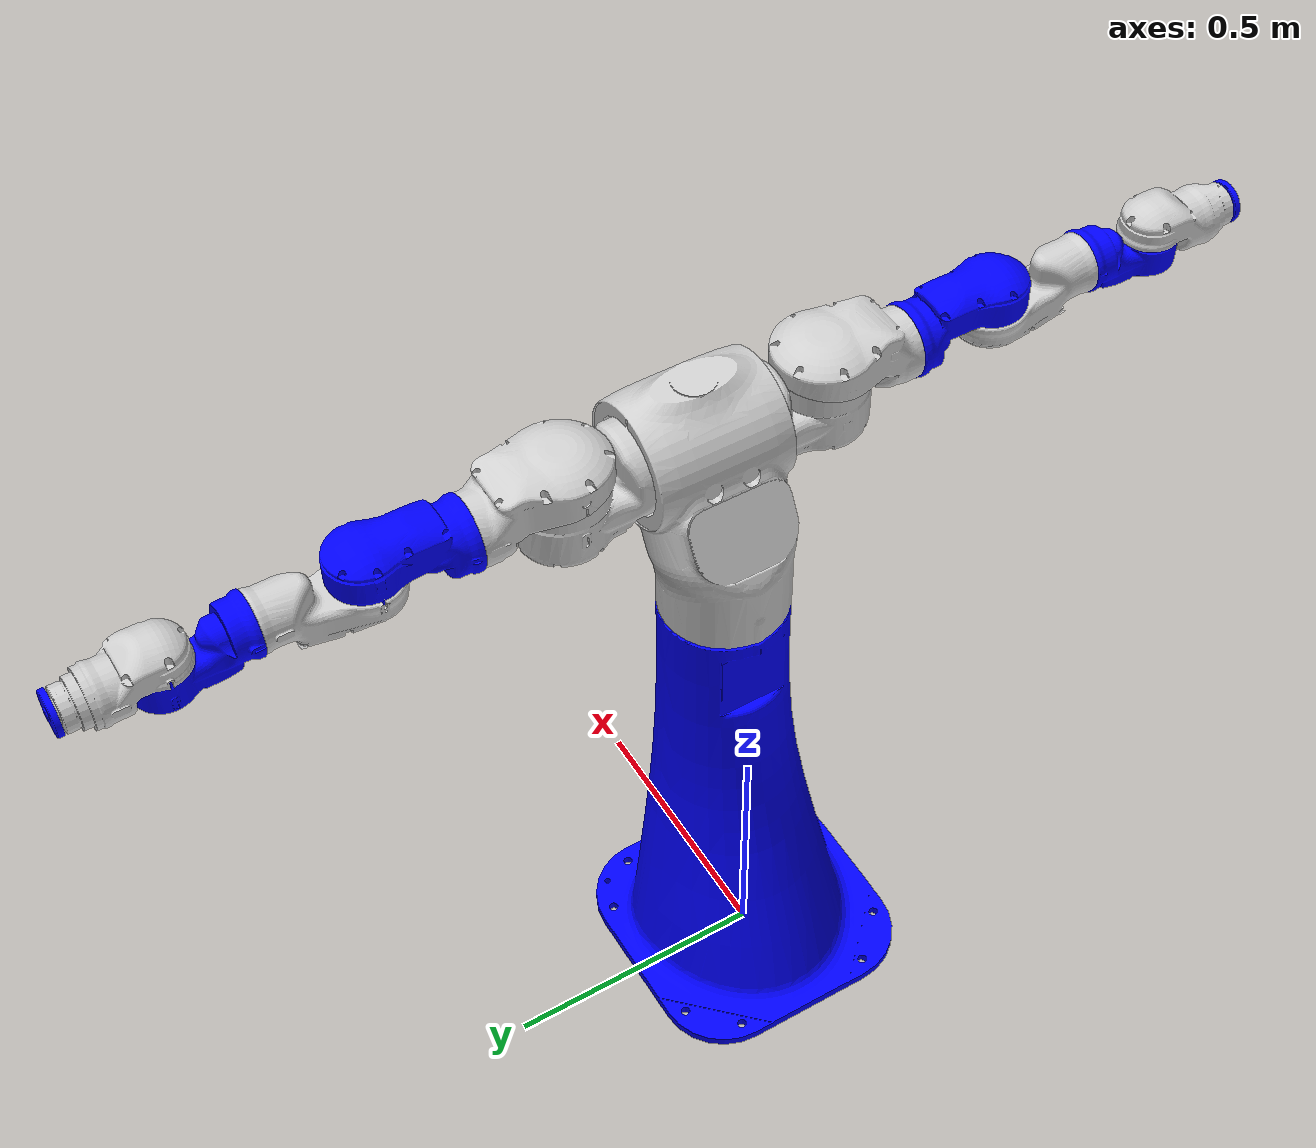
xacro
<?xml version="1.0" ?>
<robot name="motoman_sda10f" xmlns:xacro="http://www.ros.org/wiki/xacro">
  <xacro:include filename="$(find lenny_gazebo)/urdf/sda10f_macro.xacro" />
  <xacro:motoman_sda10f prefix=""/>
  <!-- Rigidly fix the model to the world -->
  <link name="world"/>
  <joint name="fixation_joint" type="fixed">
    <parent link="world"/>
    <child link="torso_base_link"/>
  </joint>
  <!-- ros_control plugin  -->
  <gazebo>
    <plugin name="ros_control" filename="libgazebo_ros_control.so"/>
  </gazebo>
</robot>

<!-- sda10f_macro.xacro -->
<robot xmlns:xacro="http://www.ros.org/wiki/xacro">
  <!-- Include xacro files -->
  <xacro:include
    filename="$(find lenny_gazebo)/urdf/common_torso_macro.xacro" />
  <xacro:include
    filename="$(find lenny_gazebo)/urdf/arm_macro.xacro" />

  <!-- Robot xacro -->
  <xacro:macro name="motoman_sda10f" params="prefix">
    <!-- Torso -->
    <xacro:torso name="${prefix}torso" prefix="${prefix}torso_"/>
    <!-- Left arm -->
    <xacro:motoman_arm name="${prefix}arm_left" prefix="${prefix}arm_left_"
      parent="${prefix}torso_link_b1" reflect="1">
        <origin xyz="0.09996 0.0275 0.32214" rpy="1.57 0 0" />
    </xacro:motoman_arm>
    <!-- Right arm -->
    <xacro:motoman_arm name="${prefix}arm_right" prefix="${prefix}arm_right_"
      parent="${prefix}torso_link_b1" reflect="-1">
        <origin xyz="0.09996 -0.0275 0.32214" rpy="1.57 0 0" />
    </xacro:motoman_arm>
  </xacro:macro>

  <!-- The following is for backwards-compatibility, it should not be used -->
  <!-- see: https://github.com/ros-industrial/motoman/issues/166 -->
  <xacro:macro name="sda10f">
    <xacro:motoman_sda10f prefix=""/>
  </xacro:macro>

</robot>

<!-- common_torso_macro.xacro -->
<robot xmlns:xacro="http://www.ros.org/wiki/xacro">
  <xacro:macro name="torso" params="name prefix">
    <!-- link list -->
    <link name="${prefix}base_link">
      <visual>
        <geometry>
          <mesh filename="package://motoman_sda10f_support/meshes/sda10f/visual/motoman_base.stl" />
        </geometry>
        <material name="blue">
          <color rgba="0 0 1 1"/>
        </material>
      </visual>
      <collision>
        <geometry>
          <mesh filename="package://motoman_sda10f_support/meshes/sda10f/collision/motoman_base.stl" />
        </geometry>
        <material name="yellow">
          <color rgba="0 1 1 1"/>
        </material>
      </collision>
      <inertial>
        <origin xyz="0 0 0.43" rpy="0 0 0" />
        <mass value="100" />
        <inertia  ixx="7.16333333333" ixy="0" ixz="0"
                  iyy="7.16333333333" iyz="0"
                  izz="2" />
      </inertial>
    </link>
    <link name="${prefix}link_b1">
      <visual>
        <origin rpy="0 0 0" xyz="0 0 0"/>
        <geometry>
          <mesh filename="package://motoman_sda10f_support/meshes/sda10f/visual/motoman_axis_b1.stl"/>
        </geometry>
        <material name="silver">
          <color rgba="0.8 0.8 0.8 1"/>
        </material>
      </visual>
      <collision>
        <origin rpy="0 0 0" xyz="0 0 0"/>
        <geometry>
          <mesh filename="package://motoman_sda10f_support/meshes/sda10f/collision/motoman_axis_b1.stl" />
        </geometry>
        <material name="yellow"/>
      </collision>
      <inertial>
        <origin xyz="0 0 0.247" rpy="0 0 0" />
        <mass value="25" />
        <inertia  ixx="0.649033333333" ixy="0" ixz="0"
                  iyy="0.649033333333" iyz="0"
                  izz="0.28125" />
      </inertial>
    </link>
    <!-- Joints -->
    <joint name="${prefix}joint_b1" type="revolute">
      <parent link="${prefix}base_link"/>
      <child link="${prefix}link_b1"/>
      <origin xyz="0.09257 0 0.8835" rpy="0 0 0"/>
      <axis xyz="0 0 1" />
      <limit lower="-2.9570" upper="2.9570" effort="100" velocity="2.26" />
      <dynamics damping="0.2" friction="0" />
    </joint>
    <!-- Transmissions -->
    <transmission name="${prefix}joint_b1">
      <type>transmission_interface/SimpleTransmission</type>
      <joint name="${prefix}joint_b1">
        <hardwareInterface>
          hardware_interface/PositionJointInterface
        </hardwareInterface>
      </joint>
      <actuator name="${prefix}joint_b1_motor">
        <mechanicalReduction>1</mechanicalReduction>
      </actuator>
    </transmission>
    <!-- Gazebo -->
    <gazebo reference="${prefix}base_link">
      <mu1>0.9</mu1>
      <mu2>0.9</mu2>
      <selfCollide>true</selfCollide>
      <material>Gazebo/Blue</material>
      <collision>
        <surface>
          <contact>
            <!-- Disable collisions with the ground -->
            <collide_bitmask>0x10000</collide_bitmask>
          </contact>
        </surface>
      </collision>
    </gazebo>
    <gazebo reference="${prefix}link_b1">
      <mu1>0.9</mu1>
      <mu2>0.9</mu2>
      <selfCollide>true</selfCollide>
      <material>Gazebo/White</material>
      <collision>
        <surface>
          <contact>
            <!-- Enable collitions with everything -->
            <collide_bitmask>0x10001</collide_bitmask>
          </contact>
        </surface>
      </collision>
    </gazebo>
  </xacro:macro>
</robot>

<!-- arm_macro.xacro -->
<robot xmlns:xacro="http://www.ros.org/wiki/xacro">
  <xacro:macro name="motoman_arm" params="name prefix parent *origin reflect">
    <link name="${prefix}link_1_s">
      <visual>
        <origin rpy="0 0 0" xyz="0 0 0"/>
        <geometry>
          <mesh filename="package://motoman_sda10f_support/meshes/sda10f/visual/motoman_axis_s.stl"/>
        </geometry>
        <material name="blue">
          <color rgba="0.8 0.8 0.8 1"/>
        </material>
      </visual>
      <collision>
        <origin rpy="0 0 0" xyz="0 0 0"/>
        <geometry>
          <mesh filename="package://motoman_sda10f_support/meshes/sda10f/collision/motoman_axis_s.stl" />
        </geometry>
        <material name="yellow"/>
      </collision>
      <inertial>
        <origin xyz="0 0 -0.125" rpy="0 0 0" />
        <mass value="7" />
        <inertia  ixx="0.0457840833333" ixy="0" ixz="0"
                  iyy="0.0457840833333" iyz="0"
                  izz="0.0186515" />
      </inertial>
    </link>
    <link name="${prefix}link_2_l">
      <visual>
        <origin rpy="0 0 0" xyz="0 0 0"/>
        <geometry>
          <mesh filename="package://motoman_sda10f_support/meshes/sda10f/visual/motoman_axis_l.stl"/>
        </geometry>
        <material name="silver"/>
      </visual>
      <collision>
        <origin rpy="0 0 0" xyz="0 0 0"/>
        <geometry>
          <mesh filename="package://motoman_sda10f_support/meshes/sda10f/collision/motoman_axis_l.stl"/>
        </geometry>
        <material name="yellow"/>
      </collision>
      <inertial>
        <origin xyz="0 0 -0.0365" rpy="0 0 0" />
        <mass value="6" />
        <inertia  ixx="0.026102" ixy="0" ixz="0"
                  iyy="0.026102" iyz="0"
                  izz="0.046875" />
      </inertial>
    </link>
    <link name="${prefix}link_3_e">
      <visual>
        <origin rpy="0 0 0" xyz="0 0 0"/>
        <geometry>
          <mesh filename="package://motoman_sda10f_support/meshes/sda10f/visual/motoman_axis_e.stl"/>
        </geometry>
        <material name="blue"/>
      </visual>
      <collision>
        <origin rpy="0 0 0" xyz="0 0 0"/>
        <geometry>
          <mesh filename="package://motoman_sda10f_support/meshes/sda10f/collision/motoman_axis_e.stl"/>
        </geometry>
        <material name="yellow"/>
      </collision>
      <inertial>
        <origin xyz="0 0 -0.125" rpy="0 0 0" />
        <mass value="5" />
        <inertia  ixx="0.0327029166667" ixy="0" ixz="0"
                  iyy="0.0327029166667" iyz="0"
                  izz="0.0133225" />
      </inertial>
    </link>
    <link name="${prefix}link_4_u">
      <visual>
        <origin rpy="0 0 0" xyz="0 0 0"/>
        <geometry>
          <mesh filename="package://motoman_sda10f_support/meshes/sda10f/visual/motoman_axis_u.stl"/>
        </geometry>
        <material name="silver"/>
      </visual>
      <collision>
        <origin rpy="0 0 0" xyz="0 0 0"/>
        <geometry>
          <mesh filename="package://motoman_sda10f_support/meshes/sda10f/collision/motoman_axis_u.stl"/>
        </geometry>
        <material name="yellow"/>
      </collision>
      <inertial>
        <origin xyz="0 0 -0.0365" rpy="0 0 0" />
        <mass value="5" />
        <inertia  ixx="0.0217516666667" ixy="0" ixz="0"
                  iyy="0.0217516666667" iyz="0"
                  izz="0.0390625" />
      </inertial>
    </link>
    <link name="${prefix}link_5_r">
      <visual>
        <origin rpy="0 0 0" xyz="0 0 0"/>
        <geometry>
          <mesh filename="package://motoman_sda10f_support/meshes/sda10f/visual/motoman_axis_r.stl"/>
        </geometry>
        <material name="blue"/>
      </visual>
      <collision>
        <origin rpy="0 0 0" xyz="0 0 0"/>
        <geometry>
          <mesh filename="package://motoman_sda10f_support/meshes/sda10f/collision/motoman_axis_r.stl"/>
        </geometry>
        <material name="yellow"/>
      </collision>
      <inertial>
        <origin xyz="0 0 -0.125" rpy="0 0 0" />
        <mass value="4" />
        <inertia  ixx="0.0261623333333" ixy="0" ixz="0"
                  iyy="0.0261623333333" iyz="0"
                  izz="0.010658" />
      </inertial>
    </link>
    <link name="${prefix}link_6_b">
      <visual>
        <origin rpy="0 0 0" xyz="0 0 0"/>
        <geometry>
          <mesh filename="package://motoman_sda10f_support/meshes/sda10f/visual/motoman_axis_b.stl"/>
        </geometry>
        <material name="silver"/>
      </visual>
      <collision>
        <origin rpy="0 0 0" xyz="0 0 0"/>
        <geometry>
          <mesh filename="package://motoman_sda10f_support/meshes/sda10f/collision/motoman_axis_b.stl"/>
        </geometry>
        <material name="yellow"/>
      </collision>
      <inertial>
        <origin xyz="0 0 -0.0365" rpy="0 0 0" />
        <mass value="4" />
        <inertia  ixx="0.0174013333333" ixy="0" ixz="0"
                  iyy="0.0174013333333" iyz="0"
                  izz="0.03125" />
      </inertial>
    </link>
    <link name="${prefix}link_7_t">
      <visual>
        <geometry>
          <mesh filename="package://motoman_sda10f_support/meshes/sda10f/visual/motoman_axis_t.stl" />
        </geometry>
        <material name="blue"/>
      </visual>
      <collision>
        <geometry>
          <mesh filename="package://motoman_sda10f_support/meshes/sda10f/collision/motoman_axis_t.stl" />
        </geometry>
        <material name="yellow"/>
      </collision>
      <inertial>
        <origin xyz="0 0 -0.0075" rpy="0 0 0" />
        <mass value="0.5" />
        <inertia  ixx="0.000209375" ixy="0" ixz="0"
                  iyy="0.000209375" iyz="0"
                  izz="0.0004" />
      </inertial>
    </link>
    <link name="${prefix}link_tool0" />

    <joint name="${prefix}joint_1_s" type="revolute">
      <parent link="${parent}"/>
      <child link="${prefix}link_1_s"/>
      <origin xyz="0.09996 ${reflect*0.0275} 0.32214" rpy="1.57 0 ${(reflect-1)*1.57}"/>
      <axis xyz="0 0 ${-reflect}" />
      <limit lower="-3.13" upper="3.13" effort="0" velocity="2.95" />
      <dynamics damping="0.2" friction="0" />
    </joint>
    <joint name="${prefix}joint_2_l" type="revolute">
      <parent link="${prefix}link_1_s"/>
      <child link="${prefix}link_2_l"/>
      <origin xyz="0 0.0577 -0.2255" rpy="-1.57 0 0"/>
      <axis xyz="0 0 ${-reflect}" />
      <limit lower="-1.90" upper="1.90" effort="0" velocity="2.95" />
      <dynamics damping="0.2" friction="0" />
    </joint>
    <joint name="${prefix}joint_3_e" type="revolute">
      <parent link="${prefix}link_2_l"/>
      <child link="${prefix}link_3_e"/>
      <origin xyz="0 0.1690 -0.0454" rpy="1.57 0 0"/>
      <axis xyz="0 0 ${-reflect}" />
      <limit lower="-2.95" upper="2.95" effort="0" velocity="2.95" />
      <dynamics damping="0.2" friction="0" />
    </joint>
    <joint name="${prefix}joint_4_u" type="revolute">
      <parent link="${prefix}link_3_e"/>
      <child link="${prefix}link_4_u"/>
      <origin xyz="0 -0.0085 -0.181" rpy="-1.57 0 0"/>
      <axis xyz="0 0 ${reflect}" />
      <limit lower="-2.36" upper="2.36" effort="0" velocity="2.95" />
      <dynamics damping="0.2" friction="0" />
    </joint>
    <joint name="${prefix}joint_5_r" type="revolute">
      <parent link="${prefix}link_4_u"/>
      <child link="${prefix}link_5_r"/>
      <origin xyz="0 0.1936 0.0155" rpy="1.57 0 0"/>
      <axis xyz="0 0 ${reflect}" />
      <limit lower="-3.13" upper="3.13" effort="0" velocity="3.48" />
      <dynamics damping="0.2" friction="0" />
    </joint>
    <joint name="${prefix}joint_6_b" type="revolute">
      <parent link="${prefix}link_5_r"/>
      <child link="${prefix}link_6_b"/>
      <origin xyz="0 0.0080 -0.155" rpy="-1.57 0 0"/>
      <axis xyz="0 0 ${reflect}" />
      <limit lower="-1.90" upper="1.90" effort="0" velocity="3.48" />
      <dynamics damping="0.2" friction="0" />
    </joint>
    <joint name="${prefix}joint_7_t" type="revolute">
      <parent link="${prefix}link_6_b"/>
      <child link="${prefix}link_7_t"/>
      <origin xyz="0 0.168 -0.015" rpy="1.57 0 0"/>
      <axis xyz="0 0 ${-reflect}" />
      <limit lower="-3.13" upper="3.13" effort="0" velocity="6.97" />
      <dynamics damping="0.2" friction="0" />
    </joint>
    <joint name="${prefix}joint_tool0" type="fixed" >
      <origin xyz="0 0 0.0" rpy="0 0 -3.13"/>
      <parent link="${prefix}link_7_t" />
      <child link="${prefix}link_tool0" />
      <dynamics damping="0.2" friction="0" />
    </joint>
    <!-- Transmissions -->
    <transmission name="${prefix}joint_1_s">
      <type>transmission_interface/SimpleTransmission</type>
      <joint name="${prefix}joint_1_s">
        <hardwareInterface>
          hardware_interface/PositionJointInterface
        </hardwareInterface>
      </joint>
      <actuator name="${prefix}motor_joint_1_s">
        <mechanicalReduction>1</mechanicalReduction>
      </actuator>
    </transmission>
    <transmission name="${prefix}joint_2_l">
      <type>transmission_interface/SimpleTransmission</type>
      <joint name="${prefix}joint_2_l">
        <hardwareInterface>
          hardware_interface/PositionJointInterface
        </hardwareInterface>
      </joint>
      <actuator name="${prefix}motor_joint_2_l">
        <mechanicalReduction>1</mechanicalReduction>
      </actuator>
    </transmission>
    <transmission name="${prefix}joint_3_e">
      <type>transmission_interface/SimpleTransmission</type>
      <joint name="${prefix}joint_3_e">
        <hardwareInterface>
          hardware_interface/PositionJointInterface
        </hardwareInterface>
      </joint>
      <actuator name="${prefix}motor_joint_3_e">
        <mechanicalReduction>1</mechanicalReduction>
      </actuator>
    </transmission>
    <transmission name="${prefix}joint_4_u">
      <type>transmission_interface/SimpleTransmission</type>
      <joint name="${prefix}joint_4_u">
        <hardwareInterface>
          hardware_interface/PositionJointInterface
        </hardwareInterface>
      </joint>
      <actuator name="${prefix}motor_joint_4_u_">
        <mechanicalReduction>1</mechanicalReduction>
      </actuator>
    </transmission>
    <transmission name="${prefix}joint_5_r">
      <type>transmission_interface/SimpleTransmission</type>
      <joint name="${prefix}joint_5_r">
        <hardwareInterface>
          hardware_interface/PositionJointInterface
        </hardwareInterface>
      </joint>
      <actuator name="${prefix}motor_joint_5_r">
        <mechanicalReduction>1</mechanicalReduction>
      </actuator>
    </transmission>
    <transmission name="${prefix}joint_6_b">
      <type>transmission_interface/SimpleTransmission</type>
      <joint name="${prefix}joint_6_b">
        <hardwareInterface>
          hardware_interface/PositionJointInterface
        </hardwareInterface>
      </joint>
      <actuator name="${prefix}motor_joint_6_b">
        <mechanicalReduction>1</mechanicalReduction>
      </actuator>
    </transmission>
    <transmission name="${prefix}joint_7_t">
      <type>transmission_interface/SimpleTransmission</type>
      <joint name="${prefix}joint_7_t">
        <hardwareInterface>
          hardware_interface/PositionJointInterface
        </hardwareInterface>
      </joint>
      <actuator name="${prefix}motor_joint_7_t">
        <mechanicalReduction>1</mechanicalReduction>
      </actuator>
    </transmission>
    <!-- Gazebo -->
    <gazebo reference="${prefix}link_1_s">
      <mu1>0.9</mu1>
      <mu2>0.9</mu2>
      <selfCollide>true</selfCollide>
      <material>Gazebo/Blue</material>
      <collision>
        <surface>
          <contact>
            <!-- Enable collitions with everything -->
            <collide_bitmask>0x10001</collide_bitmask>
          </contact>
        </surface>
      </collision>
    </gazebo>
    <gazebo reference="${prefix}link_2_l">
      <mu1>0.9</mu1>
      <mu2>0.9</mu2>
      <selfCollide>true</selfCollide>
      <material>Gazebo/White</material>
      <collision>
        <surface>
          <contact>
            <!-- Enable collitions with everything -->
            <collide_bitmask>0x10001</collide_bitmask>
          </contact>
        </surface>
      </collision>
    </gazebo>
    <gazebo reference="${prefix}link_3_e">
      <mu1>0.9</mu1>
      <mu2>0.9</mu2>
      <selfCollide>true</selfCollide>
      <material>Gazebo/Blue</material>
      <collision>
        <surface>
          <contact>
            <!-- Enable collitions with everything -->
            <collide_bitmask>0x10001</collide_bitmask>
          </contact>
        </surface>
      </collision>
    </gazebo>
    <gazebo reference="${prefix}link_4_u">
      <mu1>0.9</mu1>
      <mu2>0.9</mu2>
      <selfCollide>true</selfCollide>
      <material>Gazebo/White</material>
      <collision>
        <surface>
          <contact>
            <!-- Enable collitions with everything -->
            <collide_bitmask>0x10001</collide_bitmask>
          </contact>
        </surface>
      </collision>
    </gazebo>
    <gazebo reference="${prefix}link_5_r">
      <mu1>0.9</mu1>
      <mu2>0.9</mu2>
      <selfCollide>true</selfCollide>
      <material>Gazebo/Blue</material>
      <collision>
        <surface>
          <contact>
            <!-- Enable collitions with everything -->
            <collide_bitmask>0x10001</collide_bitmask>
          </contact>
        </surface>
      </collision>
    </gazebo>
    <gazebo reference="${prefix}link_6_b">
      <mu1>0.9</mu1>
      <mu2>0.9</mu2>
      <selfCollide>true</selfCollide>
      <material>Gazebo/White</material>
      <collision>
        <surface>
          <contact>
            <!-- Enable collitions with everything -->
            <collide_bitmask>0x10001</collide_bitmask>
          </contact>
        </surface>
      </collision>
    </gazebo>
    <gazebo reference="${prefix}link_7_t">
      <mu1>0.9</mu1>
      <mu2>0.9</mu2>
      <selfCollide>true</selfCollide>
      <material>Gazebo/Blue</material>
      <collision>
        <surface>
          <contact>
            <!-- Enable collitions with everything -->
            <collide_bitmask>0x10001</collide_bitmask>
          </contact>
        </surface>
      </collision>
    </gazebo>
  </xacro:macro>
</robot>
